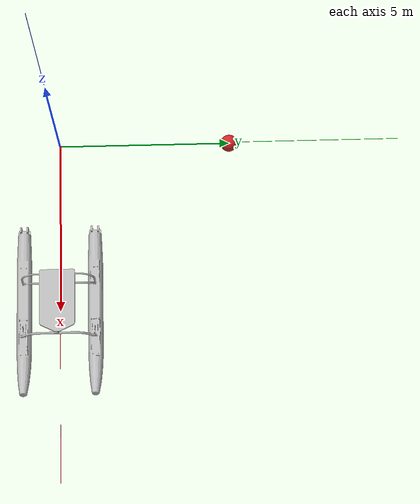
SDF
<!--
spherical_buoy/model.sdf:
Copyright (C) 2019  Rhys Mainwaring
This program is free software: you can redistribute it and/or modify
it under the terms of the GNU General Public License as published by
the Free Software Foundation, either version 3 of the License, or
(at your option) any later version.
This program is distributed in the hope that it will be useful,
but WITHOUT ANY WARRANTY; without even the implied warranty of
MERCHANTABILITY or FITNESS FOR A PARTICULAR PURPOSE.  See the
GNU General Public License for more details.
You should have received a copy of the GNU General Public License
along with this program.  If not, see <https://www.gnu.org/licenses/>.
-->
<sdf version="1.6">
 <world name="waves">
  <plugin filename="gz-sim-physics-system" name="gz::sim::systems::Physics"/>
  <plugin filename="gz-sim-sensors-system" name="gz::sim::systems::Sensors">
   <render_engine>ogre2</render_engine>
   <background_color>0.8 0.8 0.8</background_color>
  </plugin>
  <plugin filename="gz-sim-scene-broadcaster-system" name="gz::sim::systems::SceneBroadcaster"/>
  <plugin filename="gz-sim-user-commands-system" name="gz::sim::systems::UserCommands"/>
  <plugin filename="gz-sim-imu-system" name="gz::sim::systems::Imu"/>
  <scene><ambient>1.0 1.0 1.0</ambient><background>0.8 0.8 0.8</background></scene>
  <light type="directional" name="sun">
   <pose>0 0 10 0 0 0</pose>
   <diffuse>0.8 0.8 0.8 1</diffuse>
   <specular>0.6 0.6 0.6 1</specular>
   <direction>-0.5 0.1 -0.9</direction>
  </light>
  <model name="axes">
   <static>1</static>
   <link name="link">
    <visual name="r">
     <cast_shadows>0</cast_shadows>
     <pose>5 0 0.1 0 0 0</pose>
     <geometry><box><size>10 0.01 0.01</size></box></geometry>
     <material>
      <ambient>1 0 0 1</ambient>
      <diffuse>1 0 0 1</diffuse>
      <emissive>1 0 0 1</emissive>
      <specular>0.5 0.5 0.5 1</specular>
     </material>
    </visual>
    <visual name="g">
     <cast_shadows>0</cast_shadows>
     <pose>0 5 0.1 0 0 0</pose>
     <geometry><box><size>0.01 10 0.01</size></box></geometry>
     <material>
      <ambient>0 1 0 1</ambient>
      <diffuse>0 1 0 1</diffuse>
      <emissive>0 1 0 1</emissive>
      <specular>0.5 0.5 0.5 1</specular>
     </material>
    </visual>
    <visual name="b">
     <cast_shadows>0</cast_shadows>
     <pose>0 0 5.1 0 0 0</pose>
     <geometry><box><size>0.01 0.01 10</size></box></geometry>
     <material>
      <ambient>0 0 1 1</ambient>
      <diffuse>0 0 1 1</diffuse>
      <emissive>0 0 1 1</emissive>
      <specular>0.5 0.5 0.5 1</specular>
     </material>
    </visual>
   </link>
  </model>
  <include><pose>0 5 0 0 0 0</pose><uri>model://spherical_buoy</uri></include>
  <include><pose>5 0 0 0 0 0</pose><uri>model://wam-v</uri></include>
 </world>
</sdf>

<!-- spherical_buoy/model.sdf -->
<sdf version="1.6">
  <model name="spherical_buoy">
    <static>false</static>

    <plugin name="hydrodynamics" filename="libHydrodynamicsPlugin.so">
      <!-- Wave Model -->
      <wave_model>ocean_waves</wave_model>

      <!-- Hydrodynamics -->
      <damping_on>true</damping_on>
      <viscous_drag_on>true</viscous_drag_on>
      <pressure_drag_on>true</pressure_drag_on>

      <!-- Markers -->
      <markers>
        <update_rate>30</update_rate>
        <water_patch>false</water_patch>
        <waterline>false</waterline>
        <underwater_surface>false</underwater_surface>
      </markers>
    </plugin>

    <link name="base_link">
      <visual name="base_visual">
        <geometry>
          <sphere>
            <radius>0.25</radius>
          </sphere>
        </geometry>
        <material>
          <script>
            <name>Gazebo/Red</name>
          </script>
        </material>
      </visual>

      <collision name="base_collision">
        <geometry>
          <sphere>
            <radius>0.25</radius>
          </sphere>
        </geometry>
      </collision>

      <!-- Mass and inertial assume volume is 0.1 densitity of water -->
      <inertial>
        <mass>6.545</mass>
        <inertia>
          <ixx>0.1636</ixx>
          <ixy>0.0</ixy>
          <ixz>0.0</ixz>
          <iyy>0.1636</iyy>
          <iyz>0.0</iyz>
          <izz>0.1636</izz>
        </inertia>
      </inertial>

    </link>

    <!-- Chain -->

  </model>
</sdf>

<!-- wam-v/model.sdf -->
<sdf version='1.6'>

  <model name='wam-v'>
    <pose>0 0 0 0 0 0</pose>
    <static>false</static>

    <plugin name="usv_dynamics_wam-v" filename="libusv_gazebo_dynamics_plugin.so">
        <bodyName>base_link</bodyName>
        <!-- Must be same as the ocean model!-->
        <waterLevel>0</waterLevel>
        <waterDensity>997.8</waterDensity>
        <!-- Added mass -->
        <xDotU>0.0</xDotU>
        <yDotV>0.0</yDotV>
        <nDotR>0.0</nDotR>
        <!-- Linear and quadratic drag -->
        <xU>51.3</xU>
        <xUU>72.4</xUU>
        <yV>40.0</yV>
        <yVV>0.0</yVV>
        <zW>500.0</zW>
        <kP>50.0</kP>
        <mQ>50.0</mQ>
        <nR>400.0</nR>
        <nRR>0.0</nRR>
        <!-- General dimensions -->
        <hullRadius>0.213</hullRadius>
            <boatWidth>2.4</boatWidth>
            <boatLength>4.9</boatLength>
        <!-- Length discretization, AKA, "N" -->
        <length_n>2</length_n>

        <!-- Wave model -->
        <wave_model>ocean_waves</wave_model>
    </plugin>
    <link name="base_link">
      <visual name="base_visual">
        <geometry>
          <mesh>
            <uri>model://wam-v/meshes/WAM-V-Base.dae</uri>
          </mesh>
        </geometry>
      </visual>
      <collision name="base_collision">
        <geometry>
          <mesh>
            <uri>model://wam-v/meshes/wam-v-base_collision_406.stl</uri>
          </mesh>
        </geometry>
      </collision>
      <inertial>
        <pose>0 0 0 0 0 0</pose>
        <mass>180</mass>
        <inertia>
          <ixx>120</ixx>
          <ixy>0</ixy>
          <iyy>393</iyy>
          <iyz>0</iyz>
          <izz>446</izz>
        </inertia>
      </inertial>
    </link>
  </model>
</sdf>
